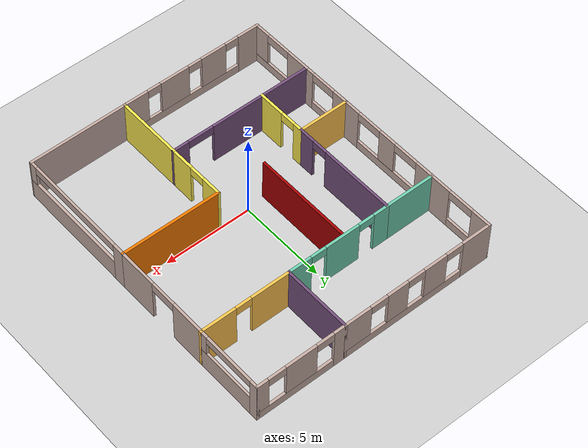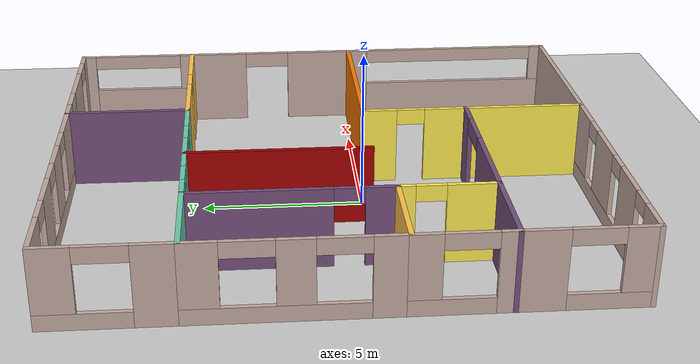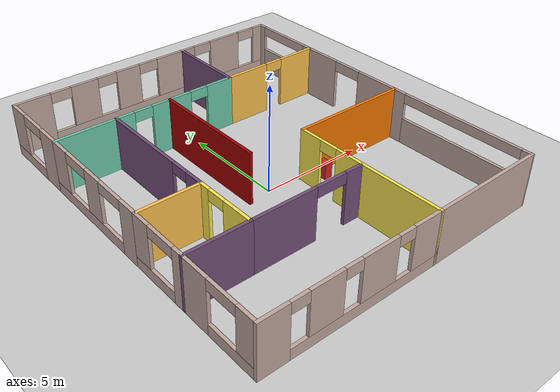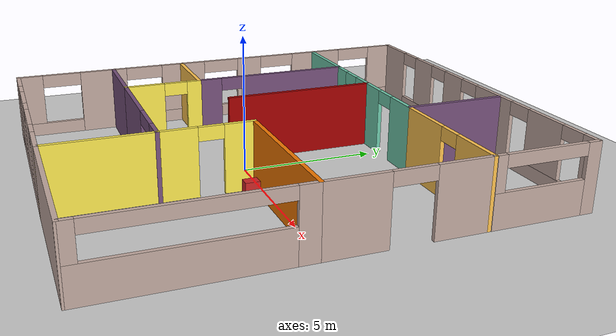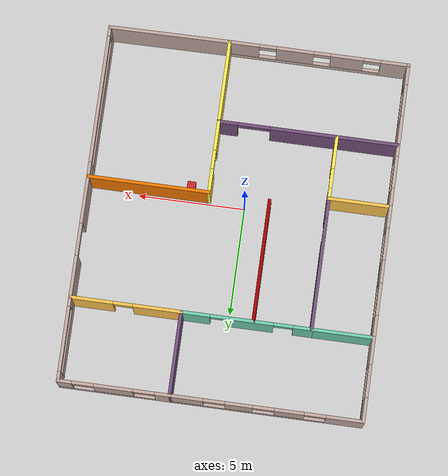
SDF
<sdf version="1.7">
 <world name="default">
  <model name="ground_plane">
   <static>1</static>
   <link name="link">
    <collision name="collision">
     <geometry><plane><normal>0 0 1</normal><size>100 100</size></plane></geometry>
     <surface><friction><ode><mu>100</mu><mu2>50</mu2></ode></friction></surface>
    </collision>
    <visual name="visual">
     <cast_shadows>0</cast_shadows>
     <geometry><plane><normal>0 0 1</normal><size>100 100</size></plane></geometry>
     <material>
      <script><uri>file://media/materials/scripts/gazebo.material</uri><name>Gazebo/Grey</name></script>
     </material>
    </visual>
   </link>
  </model>
  <model name="my_build">
   <pose>0.3084 1.00201 0 0 -0 0</pose>
   <link name="Wall_0">
    <collision name="Wall_0_Collision">
     <geometry><box><size>3 0.15 2.5</size></box></geometry>
     <pose>0 0 1.25 0 -0 0</pose>
    </collision>
    <visual name="Wall_0_Visual">
     <pose>0 0 1.25 0 -0 0</pose>
     <geometry><box><size>3 0.15 2.5</size></box></geometry>
     <material>
      <script><uri>file://media/materials/scripts/gazebo.material</uri><name>Gazebo/Grey</name></script>
      <ambient>1 0.764706 0.305882 1</ambient>
     </material>
     <meta><layer>0</layer></meta>
    </visual>
    <pose>-5.54988 -1.62469 0 0 -0 0</pose>
   </link>
   <link name="Wall_1">
    <pose>-4.12488 -3.07619 0 0 -0 -1.5708</pose>
    <visual name="Wall_1_Visual_0">
     <pose>-1.23625 0 1.25 0 -0 0</pose>
     <geometry><box><size>0.580504 0.15 2.5</size></box></geometry>
     <material>
      <script><uri>file://media/materials/scripts/gazebo.material</uri><name>Gazebo/Grey</name></script>
      <ambient>0.988235 0.913725 0.309804 1</ambient>
     </material>
     <meta><layer>0</layer></meta>
    </visual>
    <collision name="Wall_1_Collision_0">
     <geometry><box><size>0.580504 0.15 2.5</size></box></geometry>
     <pose>-1.23625 0 1.25 0 -0 0</pose>
    </collision>
    <visual name="Wall_1_Visual_1">
     <pose>0.740252 0 1.25 0 -0 0</pose>
     <geometry><box><size>1.5725 0.15 2.5</size></box></geometry>
     <material>
      <script><uri>file://media/materials/scripts/gazebo.material</uri><name>Gazebo/Grey</name></script>
      <ambient>0.988235 0.913725 0.309804 1</ambient>
     </material>
     <meta><layer>0</layer></meta>
    </visual>
    <collision name="Wall_1_Collision_1">
     <geometry><box><size>1.5725 0.15 2.5</size></box></geometry>
     <pose>0.740252 0 1.25 0 -0 0</pose>
    </collision>
    <visual name="Wall_1_Visual_2">
     <pose>-0.495996 0 2.25 0 -0 0</pose>
     <geometry><box><size>0.9 0.15 0.5</size></box></geometry>
     <material>
      <script><uri>file://media/materials/scripts/gazebo.material</uri><name>Gazebo/Grey</name></script>
      <ambient>0.988235 0.913725 0.309804 1</ambient>
     </material>
     <meta><layer>0</layer></meta>
    </visual>
    <collision name="Wall_1_Collision_2">
     <geometry><box><size>0.9 0.15 0.5</size></box></geometry>
     <pose>-0.495996 0 2.25 0 -0 0</pose>
    </collision>
   </link>
   <link name="Wall_10">
    <pose>-2.80038 -8.32469 0 0 -0 0</pose>
    <visual name="Wall_10_Visual_0">
     <pose>-3.57259 0 1.25 0 -0 0</pose>
     <geometry><box><size>1.35433 0.15 2.5</size></box></geometry>
     <material>
      <script><uri>file://media/materials/scripts/gazebo.material</uri><name>Gazebo/Grey</name></script>
      <ambient>0.760784 0.662745 0.627451 1</ambient>
     </material>
     <meta><layer>0</layer></meta>
    </visual>
    <collision name="Wall_10_Collision_0">
     <geometry><box><size>1.35433 0.15 2.5</size></box></geometry>
     <pose>-3.57259 0 1.25 0 -0 0</pose>
    </collision>
    <visual name="Wall_10_Visual_1">
     <pose>0.677163 0 0.25 0 -0 0</pose>
     <geometry><box><size>7.14519 0.15 0.5</size></box></geometry>
     <material>
      <script><uri>file://media/materials/scripts/gazebo.material</uri><name>Gazebo/Grey</name></script>
      <ambient>0.760784 0.662745 0.627451 1</ambient>
     </material>
     <meta><layer>0</layer></meta>
    </visual>
    <collision name="Wall_10_Collision_1">
     <geometry><box><size>7.14519 0.15 0.5</size></box></geometry>
     <pose>0.677163 0 0.25 0 -0 0</pose>
    </collision>
    <visual name="Wall_10_Visual_2">
     <pose>-1.32535 0 1.5 0 -0 0</pose>
     <geometry><box><size>1.54015 0.15 2</size></box></geometry>
     <material>
      <script><uri>file://media/materials/scripts/gazebo.material</uri><name>Gazebo/Grey</name></script>
      <ambient>0.760784 0.662745 0.627451 1</ambient>
     </material>
     <meta><layer>0</layer></meta>
    </visual>
    <collision name="Wall_10_Collision_2">
     <geometry><box><size>1.54015 0.15 2</size></box></geometry>
     <pose>-1.32535 0 1.5 0 -0 0</pose>
    </collision>
    <visual name="Wall_10_Visual_3">
     <pose>1.11606 0 1.5 0 -0 0</pose>
     <geometry><box><size>1.74267 0.15 2</size></box></geometry>
     <material>
      <script><uri>file://media/materials/scripts/gazebo.material</uri><name>Gazebo/Grey</name></script>
      <ambient>0.760784 0.662745 0.627451 1</ambient>
     </material>
     <meta><layer>0</layer></meta>
    </visual>
    <collision name="Wall_10_Collision_3">
     <geometry><box><size>1.74267 0.15 2</size></box></geometry>
     <pose>1.11606 0 1.5 0 -0 0</pose>
    </collision>
    <visual name="Wall_10_Visual_4">
     <pose>3.51858 0 1.5 0 -0 0</pose>
     <geometry><box><size>1.46236 0.15 2</size></box></geometry>
     <material>
      <script><uri>file://media/materials/scripts/gazebo.material</uri><name>Gazebo/Grey</name></script>
      <ambient>0.760784 0.662745 0.627451 1</ambient>
     </material>
     <meta><layer>0</layer></meta>
    </visual>
    <collision name="Wall_10_Collision_4">
     <geometry><box><size>1.46236 0.15 2</size></box></geometry>
     <pose>3.51858 0 1.5 0 -0 0</pose>
    </collision>
    <visual name="Wall_10_Visual_5">
     <pose>-2.49543 0 2.25 0 -0 0</pose>
     <geometry><box><size>0.8 0.15 0.5</size></box></geometry>
     <material>
      <script><uri>file://media/materials/scripts/gazebo.material</uri><name>Gazebo/Grey</name></script>
      <ambient>0.760784 0.662745 0.627451 1</ambient>
     </material>
     <meta><layer>0</layer></meta>
    </visual>
    <collision name="Wall_10_Collision_5">
     <geometry><box><size>0.8 0.15 0.5</size></box></geometry>
     <pose>-2.49543 0 2.25 0 -0 0</pose>
    </collision>
    <visual name="Wall_10_Visual_6">
     <pose>-0.155277 0 2.25 0 -0 0</pose>
     <geometry><box><size>0.8 0.15 0.5</size></box></geometry>
     <material>
      <script><uri>file://media/materials/scripts/gazebo.material</uri><name>Gazebo/Grey</name></script>
      <ambient>0.760784 0.662745 0.627451 1</ambient>
     </material>
     <meta><layer>0</layer></meta>
    </visual>
    <collision name="Wall_10_Collision_6">
     <geometry><box><size>0.8 0.15 0.5</size></box></geometry>
     <pose>-0.155277 0 2.25 0 -0 0</pose>
    </collision>
    <visual name="Wall_10_Visual_7">
     <pose>2.3874 0 2.25 0 -0 0</pose>
     <geometry><box><size>0.8 0.15 0.5</size></box></geometry>
     <material>
      <script><uri>file://media/materials/scripts/gazebo.material</uri><name>Gazebo/Grey</name></script>
      <ambient>0.760784 0.662745 0.627451 1</ambient>
     </material>
     <meta><layer>0</layer></meta>
    </visual>
    <collision name="Wall_10_Collision_7">
     <geometry><box><size>0.8 0.15 0.5</size></box></geometry>
     <pose>2.3874 0 2.25 0 -0 0</pose>
    </collision>
   </link>
   <link name="Wall_11">
    <collision name="Wall_11_Collision">
     <geometry><box><size>3.947 0.15 2.5</size></box></geometry>
     <pose>0 0 1.25 0 -0 0</pose>
    </collision>
    <visual name="Wall_11_Visual">
     <pose>0 0 1.25 0 -0 0</pose>
     <geometry><box><size>3.947 0.15 2.5</size></box></geometry>
     <material>
      <script><uri>file://media/materials/scripts/gazebo.material</uri><name>Gazebo/Grey</name></script>
      <ambient>0.988235 0.913725 0.309804 1</ambient>
     </material>
     <meta><layer>0</layer></meta>
    </visual>
    <pose>1.37412 -6.42619 0 0 -0 1.5708</pose>
   </link>
   <link name="Wall_12">
    <pose>-1.37538 -4.52769 0 0 -0 3.14159</pose>
    <visual name="Wall_12_Visual_0">
     <pose>-2.33894 0 1.25 0 -0 0</pose>
     <geometry><box><size>0.971723 0.15 2.5</size></box></geometry>
     <material>
      <script><uri>file://media/materials/scripts/gazebo.material</uri><name>Gazebo/Grey</name></script>
      <ambient>0.458824 0.313726 0.482353 1</ambient>
     </material>
     <meta><layer>0</layer></meta>
    </visual>
    <collision name="Wall_12_Collision_0">
     <geometry><box><size>0.971723 0.15 2.5</size></box></geometry>
     <pose>-2.33894 0 1.25 0 -0 0</pose>
    </collision>
    <visual name="Wall_12_Visual_1">
     <pose>1.23586 0 1.25 0 -0 0</pose>
     <geometry><box><size>3.17787 0.15 2.5</size></box></geometry>
     <material>
      <script><uri>file://media/materials/scripts/gazebo.material</uri><name>Gazebo/Grey</name></script>
      <ambient>0.458824 0.313726 0.482353 1</ambient>
     </material>
     <meta><layer>0</layer></meta>
    </visual>
    <collision name="Wall_12_Collision_1">
     <geometry><box><size>3.17787 0.15 2.5</size></box></geometry>
     <pose>1.23586 0 1.25 0 -0 0</pose>
    </collision>
    <visual name="Wall_12_Visual_2">
     <pose>-1.10308 0 2.25 0 -0 0</pose>
     <geometry><box><size>1.5 0.15 0.5</size></box></geometry>
     <material>
      <script><uri>file://media/materials/scripts/gazebo.material</uri><name>Gazebo/Grey</name></script>
      <ambient>0.458824 0.313726 0.482353 1</ambient>
     </material>
     <meta><layer>0</layer></meta>
    </visual>
    <collision name="Wall_12_Collision_2">
     <geometry><box><size>1.5 0.15 0.5</size></box></geometry>
     <pose>-1.10308 0 2.25 0 -0 0</pose>
    </collision>
   </link>
   <link name="Wall_14">
    <pose>-6.97488 6.40031 0 0 -0 1.5708</pose>
    <visual name="Wall_14_Visual_0">
     <pose>-1.34037 0 1.25 0 -0 0</pose>
     <geometry><box><size>1.31927 0.15 2.5</size></box></geometry>
     <material>
      <script><uri>file://media/materials/scripts/gazebo.material</uri><name>Gazebo/Grey</name></script>
      <ambient>0.760784 0.662745 0.627451 1</ambient>
     </material>
     <meta><layer>0</layer></meta>
    </visual>
    <collision name="Wall_14_Collision_0">
     <geometry><box><size>1.31927 0.15 2.5</size></box></geometry>
     <pose>-1.34037 0 1.25 0 -0 0</pose>
    </collision>
    <visual name="Wall_14_Visual_1">
     <pose>0.659634 0 0.25 0 -0 0</pose>
     <geometry><box><size>2.68073 0.15 0.5</size></box></geometry>
     <material>
      <script><uri>file://media/materials/scripts/gazebo.material</uri><name>Gazebo/Grey</name></script>
      <ambient>0.760784 0.662745 0.627451 1</ambient>
     </material>
     <meta><layer>0</layer></meta>
    </visual>
    <collision name="Wall_14_Collision_1">
     <geometry><box><size>2.68073 0.15 0.5</size></box></geometry>
     <pose>0.659634 0 0.25 0 -0 0</pose>
    </collision>
    <visual name="Wall_14_Visual_2">
     <pose>1.40963 0 1.5 0 -0 0</pose>
     <geometry><box><size>1.18073 0.15 2</size></box></geometry>
     <material>
      <script><uri>file://media/materials/scripts/gazebo.material</uri><name>Gazebo/Grey</name></script>
      <ambient>0.760784 0.662745 0.627451 1</ambient>
     </material>
     <meta><layer>0</layer></meta>
    </visual>
    <collision name="Wall_14_Collision_2">
     <geometry><box><size>1.18073 0.15 2</size></box></geometry>
     <pose>1.40963 0 1.5 0 -0 0</pose>
    </collision>
    <visual name="Wall_14_Visual_3">
     <pose>0.069268 0 2.25 0 -0 0</pose>
     <geometry><box><size>1.5 0.15 0.5</size></box></geometry>
     <material>
      <script><uri>file://media/materials/scripts/gazebo.material</uri><name>Gazebo/Grey</name></script>
      <ambient>0.760784 0.662745 0.627451 1</ambient>
     </material>
     <meta><layer>0</layer></meta>
    </visual>
    <collision name="Wall_14_Collision_3">
     <geometry><box><size>1.5 0.15 0.5</size></box></geometry>
     <pose>0.069268 0 2.25 0 -0 0</pose>
    </collision>
   </link>
   <link name="Wall_15">
    <pose>-2.54988 8.32531 0 0 -0 0</pose>
    <visual name="Wall_15_Visual_0">
     <pose>-3.61615 0 1.25 0 -0 0</pose>
     <geometry><box><size>1.76769 0.15 2.5</size></box></geometry>
     <material>
      <script><uri>file://media/materials/scripts/gazebo.material</uri><name>Gazebo/Grey</name></script>
      <ambient>0.760784 0.662745 0.627451 1</ambient>
     </material>
     <meta><layer>0</layer></meta>
    </visual>
    <collision name="Wall_15_Collision_0">
     <geometry><box><size>1.76769 0.15 2.5</size></box></geometry>
     <pose>-3.61615 0 1.25 0 -0 0</pose>
    </collision>
    <visual name="Wall_15_Visual_1">
     <pose>0.883846 0 0.25 0 -0 0</pose>
     <geometry><box><size>7.23231 0.15 0.5</size></box></geometry>
     <material>
      <script><uri>file://media/materials/scripts/gazebo.material</uri><name>Gazebo/Grey</name></script>
      <ambient>0.760784 0.662745 0.627451 1</ambient>
     </material>
     <meta><layer>0</layer></meta>
    </visual>
    <collision name="Wall_15_Collision_1">
     <geometry><box><size>7.23231 0.15 0.5</size></box></geometry>
     <pose>0.883846 0 0.25 0 -0 0</pose>
    </collision>
    <visual name="Wall_15_Visual_2">
     <pose>-1.04898 0 1.5 0 -0 0</pose>
     <geometry><box><size>1.36665 0.15 2</size></box></geometry>
     <material>
      <script><uri>file://media/materials/scripts/gazebo.material</uri><name>Gazebo/Grey</name></script>
      <ambient>0.760784 0.662745 0.627451 1</ambient>
     </material>
     <meta><layer>0</layer></meta>
    </visual>
    <collision name="Wall_15_Collision_2">
     <geometry><box><size>1.36665 0.15 2</size></box></geometry>
     <pose>-1.04898 0 1.5 0 -0 0</pose>
    </collision>
    <visual name="Wall_15_Visual_3">
     <pose>1.26379 0 1.5 0 -0 0</pose>
     <geometry><box><size>1.25889 0.15 2</size></box></geometry>
     <material>
      <script><uri>file://media/materials/scripts/gazebo.material</uri><name>Gazebo/Grey</name></script>
      <ambient>0.760784 0.662745 0.627451 1</ambient>
     </material>
     <meta><layer>0</layer></meta>
    </visual>
    <collision name="Wall_15_Collision_3">
     <geometry><box><size>1.25889 0.15 2</size></box></geometry>
     <pose>1.26379 0 1.5 0 -0 0</pose>
    </collision>
    <visual name="Wall_15_Visual_4">
     <pose>3.69661 0 1.5 0 -0 0</pose>
     <geometry><box><size>1.60677 0.15 2</size></box></geometry>
     <material>
      <script><uri>file://media/materials/scripts/gazebo.material</uri><name>Gazebo/Grey</name></script>
      <ambient>0.760784 0.662745 0.627451 1</ambient>
     </material>
     <meta><layer>0</layer></meta>
    </visual>
    <collision name="Wall_15_Collision_4">
     <geometry><box><size>1.60677 0.15 2</size></box></geometry>
     <pose>3.69661 0 1.5 0 -0 0</pose>
    </collision>
    <visual name="Wall_15_Visual_5">
     <pose>-2.23231 0 2.25 0 -0 0</pose>
     <geometry><box><size>1 0.15 0.5</size></box></geometry>
     <material>
      <script><uri>file://media/materials/scripts/gazebo.material</uri><name>Gazebo/Grey</name></script>
      <ambient>0.760784 0.662745 0.627451 1</ambient>
     </material>
     <meta><layer>0</layer></meta>
    </visual>
    <collision name="Wall_15_Collision_5">
     <geometry><box><size>1 0.15 0.5</size></box></geometry>
     <pose>-2.23231 0 2.25 0 -0 0</pose>
    </collision>
    <visual name="Wall_15_Visual_6">
     <pose>0.134344 0 2.25 0 -0 0</pose>
     <geometry><box><size>1 0.15 0.5</size></box></geometry>
     <material>
      <script><uri>file://media/materials/scripts/gazebo.material</uri><name>Gazebo/Grey</name></script>
      <ambient>0.760784 0.662745 0.627451 1</ambient>
     </material>
     <meta><layer>0</layer></meta>
    </visual>
    <collision name="Wall_15_Collision_6">
     <geometry><box><size>1 0.15 0.5</size></box></geometry>
     <pose>0.134344 0 2.25 0 -0 0</pose>
    </collision>
    <visual name="Wall_15_Visual_7">
     <pose>2.39323 0 2.25 0 -0 0</pose>
     <geometry><box><size>1 0.15 0.5</size></box></geometry>
     <material>
      <script><uri>file://media/materials/scripts/gazebo.material</uri><name>Gazebo/Grey</name></script>
      <ambient>0.760784 0.662745 0.627451 1</ambient>
     </material>
     <meta><layer>0</layer></meta>
    </visual>
    <collision name="Wall_15_Collision_7">
     <geometry><box><size>1 0.15 0.5</size></box></geometry>
     <pose>2.39323 0 2.25 0 -0 0</pose>
    </collision>
   </link>
   <link name="Wall_16">
    <collision name="Wall_16_Collision">
     <geometry><box><size>4 0.15 2.5</size></box></geometry>
     <pose>0 0 1.25 0 -0 0</pose>
    </collision>
    <visual name="Wall_16_Visual">
     <pose>0 0 1.25 0 -0 0</pose>
     <geometry><box><size>4 0.15 2.5</size></box></geometry>
     <material>
      <script><uri>file://media/materials/scripts/gazebo.material</uri><name>Gazebo/Grey</name></script>
      <ambient>0.458824 0.313726 0.482353 1</ambient>
     </material>
     <meta><layer>0</layer></meta>
    </visual>
    <pose>1.87512 6.40031 0 0 -0 -1.5708</pose>
   </link>
   <link name="Wall_17">
    <pose>-1.12488 4.47531 0 0 -0 3.14159</pose>
    <visual name="Wall_17_Visual_0">
     <pose>-2.37562 0 1.25 0 -0 0</pose>
     <geometry><box><size>1.39876 0.15 2.5</size></box></geometry>
     <material>
      <script><uri>file://media/materials/scripts/gazebo.material</uri><name>Gazebo/Grey</name></script>
      <ambient>0.435294 0.796078 0.67451 1</ambient>
     </material>
     <meta><layer>0</layer></meta>
    </visual>
    <collision name="Wall_17_Collision_0">
     <geometry><box><size>1.39876 0.15 2.5</size></box></geometry>
     <pose>-2.37562 0 1.25 0 -0 0</pose>
    </collision>
    <visual name="Wall_17_Visual_1">
     <pose>0.234108 0 1.25 0 -0 0</pose>
     <geometry><box><size>2.0207 0.15 2.5</size></box></geometry>
     <material>
      <script><uri>file://media/materials/scripts/gazebo.material</uri><name>Gazebo/Grey</name></script>
      <ambient>0.435294 0.796078 0.67451 1</ambient>
     </material>
     <meta><layer>0</layer></meta>
    </visual>
    <collision name="Wall_17_Collision_1">
     <geometry><box><size>2.0207 0.15 2.5</size></box></geometry>
     <pose>0.234108 0 1.25 0 -0 0</pose>
    </collision>
    <visual name="Wall_17_Visual_2">
     <pose>2.60973 0 1.25 0 -0 0</pose>
     <geometry><box><size>0.930542 0.15 2.5</size></box></geometry>
     <material>
      <script><uri>file://media/materials/scripts/gazebo.material</uri><name>Gazebo/Grey</name></script>
      <ambient>0.435294 0.796078 0.67451 1</ambient>
     </material>
     <meta><layer>0</layer></meta>
    </visual>
    <collision name="Wall_17_Collision_2">
     <geometry><box><size>0.930542 0.15 2.5</size></box></geometry>
     <pose>2.60973 0 1.25 0 -0 0</pose>
    </collision>
    <visual name="Wall_17_Visual_3">
     <pose>-1.22624 0 2.25 0 -0 0</pose>
     <geometry><box><size>0.9 0.15 0.5</size></box></geometry>
     <material>
      <script><uri>file://media/materials/scripts/gazebo.material</uri><name>Gazebo/Grey</name></script>
      <ambient>0.435294 0.796078 0.67451 1</ambient>
     </material>
     <meta><layer>0</layer></meta>
    </visual>
    <collision name="Wall_17_Collision_3">
     <geometry><box><size>0.9 0.15 0.5</size></box></geometry>
     <pose>-1.22624 0 2.25 0 -0 0</pose>
    </collision>
    <visual name="Wall_17_Visual_4">
     <pose>1.69446 0 2.25 0 -0 0</pose>
     <geometry><box><size>0.9 0.15 0.5</size></box></geometry>
     <material>
      <script><uri>file://media/materials/scripts/gazebo.material</uri><name>Gazebo/Grey</name></script>
      <ambient>0.435294 0.796078 0.67451 1</ambient>
     </material>
     <meta><layer>0</layer></meta>
    </visual>
    <collision name="Wall_17_Collision_4">
     <geometry><box><size>0.9 0.15 0.5</size></box></geometry>
     <pose>1.69446 0 2.25 0 -0 0</pose>
    </collision>
   </link>
   <link name="Wall_19">
    <pose>4.42512 8.32531 0 0 -0 0</pose>
    <visual name="Wall_19_Visual_0">
     <pose>-2.2474 0 1.25 0 -0 0</pose>
     <geometry><box><size>0.755203 0.15 2.5</size></box></geometry>
     <material>
      <script><uri>file://media/materials/scripts/gazebo.material</uri><name>Gazebo/Grey</name></script>
      <ambient>0.760784 0.662745 0.627451 1</ambient>
     </material>
     <meta><layer>0</layer></meta>
    </visual>
    <collision name="Wall_19_Collision_0">
     <geometry><box><size>0.755203 0.15 2.5</size></box></geometry>
     <pose>-2.2474 0 1.25 0 -0 0</pose>
    </collision>
    <visual name="Wall_19_Visual_1">
     <pose>0.377601 0 0.25 0 -0 0</pose>
     <geometry><box><size>4.4948 0.15 0.5</size></box></geometry>
     <material>
      <script><uri>file://media/materials/scripts/gazebo.material</uri><name>Gazebo/Grey</name></script>
      <ambient>0.760784 0.662745 0.627451 1</ambient>
     </material>
     <meta><layer>0</layer></meta>
    </visual>
    <collision name="Wall_19_Collision_1">
     <geometry><box><size>4.4948 0.15 0.5</size></box></geometry>
     <pose>0.377601 0 0.25 0 -0 0</pose>
    </collision>
    <visual name="Wall_19_Visual_2">
     <pose>0.029706 0 1.5 0 -0 0</pose>
     <geometry><box><size>1.79901 0.15 2</size></box></geometry>
     <material>
      <script><uri>file://media/materials/scripts/gazebo.material</uri><name>Gazebo/Grey</name></script>
      <ambient>0.760784 0.662745 0.627451 1</ambient>
     </material>
     <meta><layer>0</layer></meta>
    </visual>
    <collision name="Wall_19_Collision_2">
     <geometry><box><size>1.79901 0.15 2</size></box></geometry>
     <pose>0.029706 0 1.5 0 -0 0</pose>
    </collision>
    <visual name="Wall_19_Visual_3">
     <pose>2.2771 0 1.5 0 -0 0</pose>
     <geometry><box><size>0.695791 0.15 2</size></box></geometry>
     <material>
      <script><uri>file://media/materials/scripts/gazebo.material</uri><name>Gazebo/Grey</name></script>
      <ambient>0.760784 0.662745 0.627451 1</ambient>
     </material>
     <meta><layer>0</layer></meta>
    </visual>
    <collision name="Wall_19_Collision_3">
     <geometry><box><size>0.695791 0.15 2</size></box></geometry>
     <pose>2.2771 0 1.5 0 -0 0</pose>
    </collision>
    <visual name="Wall_19_Visual_4">
     <pose>-1.3698 0 2.25 0 -0 0</pose>
     <geometry><box><size>1 0.15 0.5</size></box></geometry>
     <material>
      <script><uri>file://media/materials/scripts/gazebo.material</uri><name>Gazebo/Grey</name></script>
      <ambient>0.760784 0.662745 0.627451 1</ambient>
     </material>
     <meta><layer>0</layer></meta>
    </visual>
    <collision name="Wall_19_Collision_4">
     <geometry><box><size>1 0.15 0.5</size></box></geometry>
     <pose>-1.3698 0 2.25 0 -0 0</pose>
    </collision>
    <visual name="Wall_19_Visual_5">
     <pose>1.42921 0 2.25 0 -0 0</pose>
     <geometry><box><size>1 0.15 0.5</size></box></geometry>
     <material>
      <script><uri>file://media/materials/scripts/gazebo.material</uri><name>Gazebo/Grey</name></script>
      <ambient>0.760784 0.662745 0.627451 1</ambient>
     </material>
     <meta><layer>0</layer></meta>
    </visual>
    <collision name="Wall_19_Collision_5">
     <geometry><box><size>1 0.15 0.5</size></box></geometry>
     <pose>1.42921 0 2.25 0 -0 0</pose>
    </collision>
   </link>
   <link name="Wall_2">
    <collision name="Wall_2_Collision">
     <geometry><box><size>3 0.15 2.5</size></box></geometry>
     <pose>0 0 1.25 0 -0 0</pose>
    </collision>
    <visual name="Wall_2_Visual">
     <pose>0 0 1.25 0 -0 0</pose>
     <geometry><box><size>3 0.15 2.5</size></box></geometry>
     <material>
      <script><uri>file://media/materials/scripts/gazebo.material</uri><name>Gazebo/Grey</name></script>
      <ambient>0.458824 0.313726 0.482353 1</ambient>
     </material>
     <meta><layer>0</layer></meta>
    </visual>
    <pose>-5.54988 -4.52769 0 0 -0 3.14159</pose>
   </link>
   <link name="Wall_20">
    <pose>6.97512 6.40031 0 0 -0 -1.5708</pose>
    <visual name="Wall_20_Visual_0">
     <pose>-1.75104 0 1.25 0 -0 0</pose>
     <geometry><box><size>0.497916 0.15 2.5</size></box></geometry>
     <material>
      <script><uri>file://media/materials/scripts/gazebo.material</uri><name>Gazebo/Grey</name></script>
      <ambient>0.760784 0.662745 0.627451 1</ambient>
     </material>
     <meta><layer>0</layer></meta>
    </visual>
    <collision name="Wall_20_Collision_0">
     <geometry><box><size>0.497916 0.15 2.5</size></box></geometry>
     <pose>-1.75104 0 1.25 0 -0 0</pose>
    </collision>
    <visual name="Wall_20_Visual_1">
     <pose>0.248958 0 0.625 0 -0 0</pose>
     <geometry><box><size>3.50208 0.15 1.25</size></box></geometry>
     <material>
      <script><uri>file://media/materials/scripts/gazebo.material</uri><name>Gazebo/Grey</name></script>
      <ambient>0.760784 0.662745 0.627451 1</ambient>
     </material>
     <meta><layer>0</layer></meta>
    </visual>
    <collision name="Wall_20_Collision_1">
     <geometry><box><size>3.50208 0.15 1.25</size></box></geometry>
     <pose>0.248958 0 0.625 0 -0 0</pose>
    </collision>
    <visual name="Wall_20_Visual_2">
     <pose>1.74896 0 1.875 0 -0 0</pose>
     <geometry><box><size>0.502084 0.15 1.25</size></box></geometry>
     <material>
      <script><uri>file://media/materials/scripts/gazebo.material</uri><name>Gazebo/Grey</name></script>
      <ambient>0.760784 0.662745 0.627451 1</ambient>
     </material>
     <meta><layer>0</layer></meta>
    </visual>
    <collision name="Wall_20_Collision_2">
     <geometry><box><size>0.502084 0.15 1.25</size></box></geometry>
     <pose>1.74896 0 1.875 0 -0 0</pose>
    </collision>
    <visual name="Wall_20_Visual_3">
     <pose>-0.002084 0 2.275 0 -0 0</pose>
     <geometry><box><size>3 0.15 0.45</size></box></geometry>
     <material>
      <script><uri>file://media/materials/scripts/gazebo.material</uri><name>Gazebo/Grey</name></script>
      <ambient>0.760784 0.662745 0.627451 1</ambient>
     </material>
     <meta><layer>0</layer></meta>
    </visual>
    <collision name="Wall_20_Collision_3">
     <geometry><box><size>3 0.15 0.45</size></box></geometry>
     <pose>-0.002084 0 2.275 0 -0 0</pose>
    </collision>
   </link>
   <link name="Wall_21">
    <pose>4.42512 4.47531 0 0 -0 3.14159</pose>
    <visual name="Wall_21_Visual_0">
     <pose>-1.60106 0 1.25 0 -0 0</pose>
     <geometry><box><size>2.04788 0.15 2.5</size></box></geometry>
     <material>
      <script><uri>file://media/materials/scripts/gazebo.material</uri><name>Gazebo/Grey</name></script>
      <ambient>1 0.764706 0.305882 1</ambient>
     </material>
     <meta><layer>0</layer></meta>
    </visual>
    <collision name="Wall_21_Collision_0">
     <geometry><box><size>2.04788 0.15 2.5</size></box></geometry>
     <pose>-1.60106 0 1.25 0 -0 0</pose>
    </collision>
    <visual name="Wall_21_Visual_1">
     <pose>1.47394 0 1.25 0 -0 0</pose>
     <geometry><box><size>2.30212 0.15 2.5</size></box></geometry>
     <material>
      <script><uri>file://media/materials/scripts/gazebo.material</uri><name>Gazebo/Grey</name></script>
      <ambient>1 0.764706 0.305882 1</ambient>
     </material>
     <meta><layer>0</layer></meta>
    </visual>
    <collision name="Wall_21_Collision_1">
     <geometry><box><size>2.30212 0.15 2.5</size></box></geometry>
     <pose>1.47394 0 1.25 0 -0 0</pose>
    </collision>
    <visual name="Wall_21_Visual_2">
     <pose>-0.12712 0 2.25 0 -0 0</pose>
     <geometry><box><size>0.9 0.15 0.5</size></box></geometry>
     <material>
      <script><uri>file://media/materials/scripts/gazebo.material</uri><name>Gazebo/Grey</name></script>
      <ambient>1 0.764706 0.305882 1</ambient>
     </material>
     <meta><layer>0</layer></meta>
    </visual>
    <collision name="Wall_21_Collision_2">
     <geometry><box><size>0.9 0.15 0.5</size></box></geometry>
     <pose>-0.12712 0 2.25 0 -0 0</pose>
    </collision>
   </link>
   <link name="Wall_23">
    <pose>1.37412 -2.85269 0 0 -0 1.5708</pose>
    <visual name="Wall_23_Visual_0">
     <pose>-1.03306 0 1.25 0 -0 0</pose>
     <geometry><box><size>1.43387 0.15 2.5</size></box></geometry>
     <material>
      <script><uri>file://media/materials/scripts/gazebo.material</uri><name>Gazebo/Grey</name></script>
      <ambient>0.988235 0.913725 0.309804 1</ambient>
     </material>
     <meta><layer>0</layer></meta>
    </visual>
    <collision name="Wall_23_Collision_0">
     <geometry><box><size>1.43387 0.15 2.5</size></box></geometry>
     <pose>-1.03306 0 1.25 0 -0 0</pose>
    </collision>
    <visual name="Wall_23_Visual_1">
     <pose>1.16694 0 1.25 0 -0 0</pose>
     <geometry><box><size>1.16613 0.15 2.5</size></box></geometry>
     <material>
      <script><uri>file://media/materials/scripts/gazebo.material</uri><name>Gazebo/Grey</name></script>
      <ambient>0.988235 0.913725 0.309804 1</ambient>
     </material>
     <meta><layer>0</layer></meta>
    </visual>
    <collision name="Wall_23_Collision_1">
     <geometry><box><size>1.16613 0.15 2.5</size></box></geometry>
     <pose>1.16694 0 1.25 0 -0 0</pose>
    </collision>
    <visual name="Wall_23_Visual_2">
     <pose>0.133869 0 2.25 0 -0 0</pose>
     <geometry><box><size>0.9 0.15 0.5</size></box></geometry>
     <material>
      <script><uri>file://media/materials/scripts/gazebo.material</uri><name>Gazebo/Grey</name></script>
      <ambient>0.988235 0.913725 0.309804 1</ambient>
     </material>
     <meta><layer>0</layer></meta>
    </visual>
    <collision name="Wall_23_Collision_2">
     <geometry><box><size>0.9 0.15 0.5</size></box></geometry>
     <pose>0.133869 0 2.25 0 -0 0</pose>
    </collision>
   </link>
   <link name="Wall_24">
    <collision name="Wall_24_Collision">
     <geometry><box><size>5.75 0.15 2.5</size></box></geometry>
     <pose>0 0 1.25 0 -0 0</pose>
    </collision>
    <visual name="Wall_24_Visual">
     <pose>0 0 1.25 0 -0 0</pose>
     <geometry><box><size>5.75 0.15 2.5</size></box></geometry>
     <material>
      <script><uri>file://media/materials/scripts/gazebo.material</uri><name>Gazebo/Grey</name></script>
      <ambient>0.960784 0.47451 0 1</ambient>
     </material>
     <meta><layer>0</layer></meta>
    </visual>
    <pose>4.17412 -1.17769 0 0 -0 0</pose>
   </link>
   <link name="Wall_25">
    <pose>6.97412 -4.72769 0 0 -0 -1.5708</pose>
    <visual name="Wall_25_Visual_0">
     <pose>-3.25347 0 1.25 0 -0 0</pose>
     <geometry><box><size>0.743059 0.15 2.5</size></box></geometry>
     <material>
      <script><uri>file://media/materials/scripts/gazebo.material</uri><name>Gazebo/Grey</name></script>
      <ambient>0.760784 0.662745 0.627451 1</ambient>
     </material>
     <meta><layer>0</layer></meta>
    </visual>
    <collision name="Wall_25_Collision_0">
     <geometry><box><size>0.743059 0.15 2.5</size></box></geometry>
     <pose>-3.25347 0 1.25 0 -0 0</pose>
    </collision>
    <visual name="Wall_25_Visual_1">
     <pose>0.37153 0 0.625 0 -0 0</pose>
     <geometry><box><size>6.50694 0.15 1.25</size></box></geometry>
     <material>
      <script><uri>file://media/materials/scripts/gazebo.material</uri><name>Gazebo/Grey</name></script>
      <ambient>0.760784 0.662745 0.627451 1</ambient>
     </material>
     <meta><layer>0</layer></meta>
    </visual>
    <collision name="Wall_25_Collision_1">
     <geometry><box><size>6.50694 0.15 1.25</size></box></geometry>
     <pose>0.37153 0 0.625 0 -0 0</pose>
    </collision>
    <visual name="Wall_25_Visual_2">
     <pose>3.37153 0 1.875 0 -0 0</pose>
     <geometry><box><size>0.506941 0.15 1.25</size></box></geometry>
     <material>
      <script><uri>file://media/materials/scripts/gazebo.material</uri><name>Gazebo/Grey</name></script>
      <ambient>0.760784 0.662745 0.627451 1</ambient>
     </material>
     <meta><layer>0</layer></meta>
    </visual>
    <collision name="Wall_25_Collision_2">
     <geometry><box><size>0.506941 0.15 1.25</size></box></geometry>
     <pose>3.37153 0 1.875 0 -0 0</pose>
    </collision>
    <visual name="Wall_25_Visual_3">
     <pose>0.118059 0 2.275 0 -0 0</pose>
     <geometry><box><size>6 0.15 0.45</size></box></geometry>
     <material>
      <script><uri>file://media/materials/scripts/gazebo.material</uri><name>Gazebo/Grey</name></script>
      <ambient>0.760784 0.662745 0.627451 1</ambient>
     </material>
     <meta><layer>0</layer></meta>
    </visual>
    <collision name="Wall_25_Collision_3">
     <geometry><box><size>6 0.15 0.45</size></box></geometry>
     <pose>0.118059 0 2.275 0 -0 0</pose>
    </collision>
   </link>
   <link name="Wall_26">
    <collision name="Wall_26_Collision">
     <geometry><box><size>5.7502 0.15 2.5</size></box></geometry>
     <pose>0 0 1.25 0 -0 0</pose>
    </collision>
    <visual name="Wall_26_Visual">
     <pose>0 0 1.25 0 -0 0</pose>
     <geometry><box><size>5.7502 0.15 2.5</size></box></geometry>
     <material>
      <script><uri>file://media/materials/scripts/gazebo.material</uri><name>Gazebo/Grey</name></script>
      <ambient>0.760784 0.662745 0.627451 1</ambient>
     </material>
     <meta><layer>0</layer></meta>
    </visual>
    <pose>4.17412 -8.30119 0 0 -0 -3.1332</pose>
   </link>
   <link name="Wall_28">
    <pose>6.97462 1.64881 0 0 -0 -1.57097</pose>
    <visual name="Wall_28_Visual_0">
     <pose>-1.89193 0 1.25 0 -0 0</pose>
     <geometry><box><size>2.01914 0.15 2.5</size></box></geometry>
     <material>
      <script><uri>file://media/materials/scripts/gazebo.material</uri><name>Gazebo/Grey</name></script>
      <ambient>0.760784 0.662745 0.627451 1</ambient>
     </material>
     <meta><layer>0</layer></meta>
    </visual>
    <collision name="Wall_28_Collision_0">
     <geometry><box><size>2.01914 0.15 2.5</size></box></geometry>
     <pose>-1.89193 0 1.25 0 -0 0</pose>
    </collision>
    <visual name="Wall_28_Visual_1">
     <pose>1.75957 0 1.25 0 -0 0</pose>
     <geometry><box><size>2.28386 0.15 2.5</size></box></geometry>
     <material>
      <script><uri>file://media/materials/scripts/gazebo.material</uri><name>Gazebo/Grey</name></script>
      <ambient>0.760784 0.662745 0.627451 1</ambient>
     </material>
     <meta><layer>0</layer></meta>
    </visual>
    <collision name="Wall_28_Collision_1">
     <geometry><box><size>2.28386 0.15 2.5</size></box></geometry>
     <pose>1.75957 0 1.25 0 -0 0</pose>
    </collision>
    <visual name="Wall_28_Visual_2">
     <pose>-0.13236 0 2.25 0 -0 0</pose>
     <geometry><box><size>1.5 0.15 0.5</size></box></geometry>
     <material>
      <script><uri>file://media/materials/scripts/gazebo.material</uri><name>Gazebo/Grey</name></script>
      <ambient>0.760784 0.662745 0.627451 1</ambient>
     </material>
     <meta><layer>0</layer></meta>
    </visual>
    <collision name="Wall_28_Collision_2">
     <geometry><box><size>1.5 0.15 0.5</size></box></geometry>
     <pose>-0.13236 0 2.25 0 -0 0</pose>
    </collision>
   </link>
   <link name="Wall_3">
    <pose>-6.97488 -3.07619 0 0 -0 1.5708</pose>
    <visual name="Wall_3_Visual_0">
     <pose>-1.22389 0 1.25 0 -0 0</pose>
     <geometry><box><size>0.605219 0.15 2.5</size></box></geometry>
     <material>
      <script><uri>file://media/materials/scripts/gazebo.material</uri><name>Gazebo/Grey</name></script>
      <ambient>0.760784 0.662745 0.627451 1</ambient>
     </material>
     <meta><layer>0</layer></meta>
    </visual>
    <collision name="Wall_3_Collision_0">
     <geometry><box><size>0.605219 0.15 2.5</size></box></geometry>
     <pose>-1.22389 0 1.25 0 -0 0</pose>
    </collision>
    <visual name="Wall_3_Visual_1">
     <pose>0.30261 0 0.25 0 -0 0</pose>
     <geometry><box><size>2.44778 0.15 0.5</size></box></geometry>
     <material>
      <script><uri>file://media/materials/scripts/gazebo.material</uri><name>Gazebo/Grey</name></script>
      <ambient>0.760784 0.662745 0.627451 1</ambient>
     </material>
     <meta><layer>0</layer></meta>
    </visual>
    <collision name="Wall_3_Collision_1">
     <geometry><box><size>2.44778 0.15 0.5</size></box></geometry>
     <pose>0.30261 0 0.25 0 -0 0</pose>
    </collision>
    <visual name="Wall_3_Visual_2">
     <pose>1.05261 0 1.5 0 -0 0</pose>
     <geometry><box><size>0.947781 0.15 2</size></box></geometry>
     <material>
      <script><uri>file://media/materials/scripts/gazebo.material</uri><name>Gazebo/Grey</name></script>
      <ambient>0.760784 0.662745 0.627451 1</ambient>
     </material>
     <meta><layer>0</layer></meta>
    </visual>
    <collision name="Wall_3_Collision_2">
     <geometry><box><size>0.947781 0.15 2</size></box></geometry>
     <pose>1.05261 0 1.5 0 -0 0</pose>
    </collision>
    <visual name="Wall_3_Visual_3">
     <pose>-0.171281 0 2.25 0 -0 0</pose>
     <geometry><box><size>1.5 0.15 0.5</size></box></geometry>
     <material>
      <script><uri>file://media/materials/scripts/gazebo.material</uri><name>Gazebo/Grey</name></script>
      <ambient>0.760784 0.662745 0.627451 1</ambient>
     </material>
     <meta><layer>0</layer></meta>
    </visual>
    <collision name="Wall_3_Collision_3">
     <geometry><box><size>1.5 0.15 0.5</size></box></geometry>
     <pose>-0.171281 0 2.25 0 -0 0</pose>
    </collision>
   </link>
   <link name="Wall_32">
    <collision name="Wall_32_Collision">
     <geometry><box><size>5.75 0.15 2.5</size></box></geometry>
     <pose>0 0 1.25 0 -0 0</pose>
    </collision>
    <visual name="Wall_32_Visual">
     <pose>0 0 1.25 0 -0 0</pose>
     <geometry><box><size>5.75 0.15 2.5</size></box></geometry>
     <material>
      <script><uri>file://media/materials/scripts/gazebo.material</uri><name>Gazebo/Grey</name></script>
      <ambient>0.643137 0 0 1</ambient>
     </material>
     <meta><layer>0</layer></meta>
    </visual>
    <pose>-1.43906 1.64205 0 0 -0 -1.5708</pose>
   </link>
   <link name="Wall_5">
    <pose>-6.97488 1.42531 0 0 -0 1.5708</pose>
    <visual name="Wall_5_Visual_0">
     <pose>-2.5905 0 1.25 0 -0 0</pose>
     <geometry><box><size>1.069 0.15 2.5</size></box></geometry>
     <material>
      <script><uri>file://media/materials/scripts/gazebo.material</uri><name>Gazebo/Grey</name></script>
      <ambient>0.760784 0.662745 0.627451 1</ambient>
     </material>
     <meta><layer>0</layer></meta>
    </visual>
    <collision name="Wall_5_Collision_0">
     <geometry><box><size>1.069 0.15 2.5</size></box></geometry>
     <pose>-2.5905 0 1.25 0 -0 0</pose>
    </collision>
    <visual name="Wall_5_Visual_1">
     <pose>0.534501 0 0.25 0 -0 0</pose>
     <geometry><box><size>5.181 0.15 0.5</size></box></geometry>
     <material>
      <script><uri>file://media/materials/scripts/gazebo.material</uri><name>Gazebo/Grey</name></script>
      <ambient>0.760784 0.662745 0.627451 1</ambient>
     </material>
     <meta><layer>0</layer></meta>
    </visual>
    <collision name="Wall_5_Collision_1">
     <geometry><box><size>5.181 0.15 0.5</size></box></geometry>
     <pose>0.534501 0 0.25 0 -0 0</pose>
    </collision>
    <visual name="Wall_5_Visual_2">
     <pose>-0.021208 0 1.5 0 -0 0</pose>
     <geometry><box><size>1.06958 0.15 2</size></box></geometry>
     <material>
      <script><uri>file://media/materials/scripts/gazebo.material</uri><name>Gazebo/Grey</name></script>
      <ambient>0.760784 0.662745 0.627451 1</ambient>
     </material>
     <meta><layer>0</layer></meta>
    </visual>
    <collision name="Wall_5_Collision_2">
     <geometry><box><size>1.06958 0.15 2</size></box></geometry>
     <pose>-0.021208 0 1.5 0 -0 0</pose>
    </collision>
    <visual name="Wall_5_Visual_3">
     <pose>2.56929 0 1.5 0 -0 0</pose>
     <geometry><box><size>1.11142 0.15 2</size></box></geometry>
     <material>
      <script><uri>file://media/materials/scripts/gazebo.material</uri><name>Gazebo/Grey</name></script>
      <ambient>0.760784 0.662745 0.627451 1</ambient>
     </material>
     <meta><layer>0</layer></meta>
    </visual>
    <collision name="Wall_5_Collision_3">
     <geometry><box><size>1.11142 0.15 2</size></box></geometry>
     <pose>2.56929 0 1.5 0 -0 0</pose>
    </collision>
    <visual name="Wall_5_Visual_4">
     <pose>-1.306 0 2.25 0 -0 0</pose>
     <geometry><box><size>1.5 0.15 0.5</size></box></geometry>
     <material>
      <script><uri>file://media/materials/scripts/gazebo.material</uri><name>Gazebo/Grey</name></script>
      <ambient>0.760784 0.662745 0.627451 1</ambient>
     </material>
     <meta><layer>0</layer></meta>
    </visual>
    <collision name="Wall_5_Collision_4">
     <geometry><box><size>1.5 0.15 0.5</size></box></geometry>
     <pose>-1.306 0 2.25 0 -0 0</pose>
    </collision>
    <visual name="Wall_5_Visual_5">
     <pose>1.26358 0 2.25 0 -0 0</pose>
     <geometry><box><size>1.5 0.15 0.5</size></box></geometry>
     <material>
      <script><uri>file://media/materials/scripts/gazebo.material</uri><name>Gazebo/Grey</name></script>
      <ambient>0.760784 0.662745 0.627451 1</ambient>
     </material>
     <meta><layer>0</layer></meta>
    </visual>
    <collision name="Wall_5_Collision_5">
     <geometry><box><size>1.5 0.15 0.5</size></box></geometry>
     <pose>1.26358 0 2.25 0 -0 0</pose>
    </collision>
   </link>
   <link name="Wall_6">
    <collision name="Wall_6_Collision">
     <geometry><box><size>3 0.15 2.5</size></box></geometry>
     <pose>0 0 1.25 0 -0 0</pose>
    </collision>
    <visual name="Wall_6_Visual">
     <pose>0 0 1.25 0 -0 0</pose>
     <geometry><box><size>3 0.15 2.5</size></box></geometry>
     <material>
      <script><uri>file://media/materials/scripts/gazebo.material</uri><name>Gazebo/Grey</name></script>
      <ambient>0.435294 0.796078 0.67451 1</ambient>
     </material>
     <meta><layer>0</layer></meta>
    </visual>
    <pose>-5.54988 4.47531 0 0 -0 0</pose>
   </link>
   <link name="Wall_7">
    <pose>-4.12488 1.42531 0 0 -0 -1.5708</pose>
    <visual name="Wall_7_Visual_0">
     <pose>-0.948043 0 1.25 0 -0 0</pose>
     <geometry><box><size>4.35391 0.15 2.5</size></box></geometry>
     <material>
      <script><uri>file://media/materials/scripts/gazebo.material</uri><name>Gazebo/Grey</name></script>
      <ambient>0.458824 0.313726 0.482353 1</ambient>
     </material>
     <meta><layer>0</layer></meta>
    </visual>
    <collision name="Wall_7_Collision_0">
     <geometry><box><size>4.35391 0.15 2.5</size></box></geometry>
     <pose>-0.948043 0 1.25 0 -0 0</pose>
    </collision>
    <visual name="Wall_7_Visual_1">
     <pose>2.62696 0 1.25 0 -0 0</pose>
     <geometry><box><size>0.996087 0.15 2.5</size></box></geometry>
     <material>
      <script><uri>file://media/materials/scripts/gazebo.material</uri><name>Gazebo/Grey</name></script>
      <ambient>0.458824 0.313726 0.482353 1</ambient>
     </material>
     <meta><layer>0</layer></meta>
    </visual>
    <collision name="Wall_7_Collision_1">
     <geometry><box><size>0.996087 0.15 2.5</size></box></geometry>
     <pose>2.62696 0 1.25 0 -0 0</pose>
    </collision>
    <visual name="Wall_7_Visual_2">
     <pose>1.67891 0 2.25 0 -0 0</pose>
     <geometry><box><size>0.9 0.15 0.5</size></box></geometry>
     <material>
      <script><uri>file://media/materials/scripts/gazebo.material</uri><name>Gazebo/Grey</name></script>
      <ambient>0.458824 0.313726 0.482353 1</ambient>
     </material>
     <meta><layer>0</layer></meta>
    </visual>
    <collision name="Wall_7_Collision_2">
     <geometry><box><size>0.9 0.15 0.5</size></box></geometry>
     <pose>1.67891 0 2.25 0 -0 0</pose>
    </collision>
   </link>
   <link name="Wall_9">
    <pose>-6.97488 -6.42619 0 0 -0 -1.5708</pose>
    <visual name="Wall_9_Visual_0">
     <pose>-1.25198 0 1.25 0 -0 0</pose>
     <geometry><box><size>1.44305 0.15 2.5</size></box></geometry>
     <material>
      <script><uri>file://media/materials/scripts/gazebo.material</uri><name>Gazebo/Grey</name></script>
      <ambient>0.760784 0.662745 0.627451 1</ambient>
     </material>
     <meta><layer>0</layer></meta>
    </visual>
    <collision name="Wall_9_Collision_0">
     <geometry><box><size>1.44305 0.15 2.5</size></box></geometry>
     <pose>-1.25198 0 1.25 0 -0 0</pose>
    </collision>
    <visual name="Wall_9_Visual_1">
     <pose>0.721525 0 0.25 0 -0 0</pose>
     <geometry><box><size>2.50395 0.15 0.5</size></box></geometry>
     <material>
      <script><uri>file://media/materials/scripts/gazebo.material</uri><name>Gazebo/Grey</name></script>
      <ambient>0.760784 0.662745 0.627451 1</ambient>
     </material>
     <meta><layer>0</layer></meta>
    </visual>
    <collision name="Wall_9_Collision_1">
     <geometry><box><size>2.50395 0.15 0.5</size></box></geometry>
     <pose>0.721525 0 0.25 0 -0 0</pose>
    </collision>
    <visual name="Wall_9_Visual_2">
     <pose>1.47152 0 1.5 0 -0 0</pose>
     <geometry><box><size>1.00395 0.15 2</size></box></geometry>
     <material>
      <script><uri>file://media/materials/scripts/gazebo.material</uri><name>Gazebo/Grey</name></script>
      <ambient>0.760784 0.662745 0.627451 1</ambient>
     </material>
     <meta><layer>0</layer></meta>
    </visual>
    <collision name="Wall_9_Collision_2">
     <geometry><box><size>1.00395 0.15 2</size></box></geometry>
     <pose>1.47152 0 1.5 0 -0 0</pose>
    </collision>
    <visual name="Wall_9_Visual_3">
     <pose>0.21955 0 2.25 0 -0 0</pose>
     <geometry><box><size>1.5 0.15 0.5</size></box></geometry>
     <material>
      <script><uri>file://media/materials/scripts/gazebo.material</uri><name>Gazebo/Grey</name></script>
      <ambient>0.760784 0.662745 0.627451 1</ambient>
     </material>
     <meta><layer>0</layer></meta>
    </visual>
    <collision name="Wall_9_Collision_3">
     <geometry><box><size>1.5 0.15 0.5</size></box></geometry>
     <pose>0.21955 0 2.25 0 -0 0</pose>
    </collision>
   </link>
   <static>1</static>
  </model>
  <model name="unit_box_red">
   <link name="link">
    <inertial>
     <mass>1</mass>
     <inertia>
      <ixx>0.166667</ixx>
      <ixy>0</ixy>
      <ixz>0</ixz>
      <iyy>0.166667</iyy>
      <iyz>0</iyz>
      <izz>0.166667</izz>
     </inertia>
    </inertial>
    <visual name="visual">
     <geometry><box><size>0.386843 0.517416 0.730192</size></box></geometry>
     <material>
      <script><name>Gazebo/Red</name><uri>file://media/materials/scripts/gazebo.material</uri></script>
      <shader type="pixel"><normal_map>__default__</normal_map></shader>
      <ambient>1 0 0 1</ambient>
      <diffuse>1 0 0 1</diffuse>
      <specular>0.1 0.1 0.1 1</specular>
      <emissive>0 0 0 1</emissive>
     </material>
    </visual>
    <collision name="collision">
     <geometry><box><size>0.386843 0.517416 0.730192</size></box></geometry>
     <surface>
      <friction>
       <ode><mu>1</mu><mu2>1</mu2><fdir1>0 0 0</fdir1><slip1>0</slip1><slip2>0</slip2></ode>
       <torsional>
        <coefficient>1</coefficient>
        <patch_radius>0</patch_radius>
        <surface_radius>0</surface_radius>
        <use_patch_radius>1</use_patch_radius>
        <ode><slip>0</slip></ode>
       </torsional>
      </friction>
      <bounce><restitution_coefficient>0</restitution_coefficient><threshold>1e+06</threshold></bounce>
      <contact>
       <collide_without_contact>0</collide_without_contact>
       <collide_without_contact_bitmask>1</collide_without_contact_bitmask>
       <collide_bitmask>1</collide_bitmask>
       <ode>
        <soft_cfm>0</soft_cfm>
        <soft_erp>0.2</soft_erp>
        <kp>1e+13</kp>
        <kd>1</kd>
        <max_vel>0.01</max_vel>
        <min_depth>0</min_depth>
       </ode>
       <bullet>
        <split_impulse>1</split_impulse>
        <split_impulse_penetration_threshold>-0.01</split_impulse_penetration_threshold>
        <soft_cfm>0</soft_cfm>
        <soft_erp>0.2</soft_erp>
        <kp>1e+13</kp>
        <kd>1</kd>
       </bullet>
      </contact>
     </surface>
    </collision>
   </link>
   <static>0</static>
   <pose>2.59201 -0.627477 0.365096 0 -0 0</pose>
  </model>
 </world>
</sdf>
